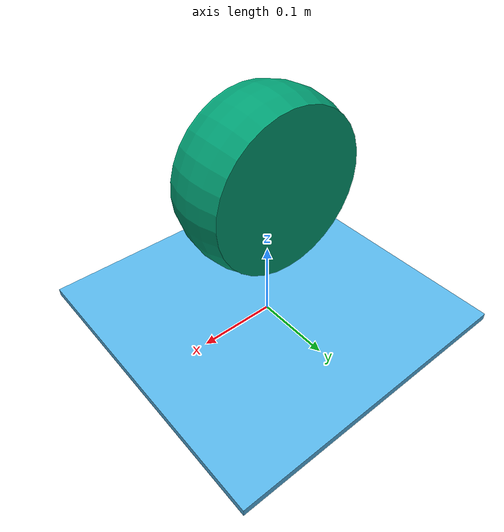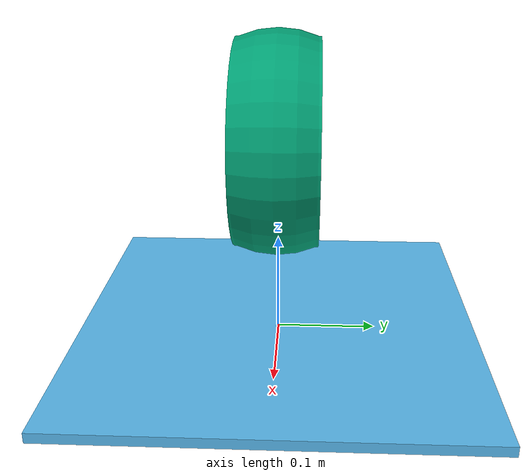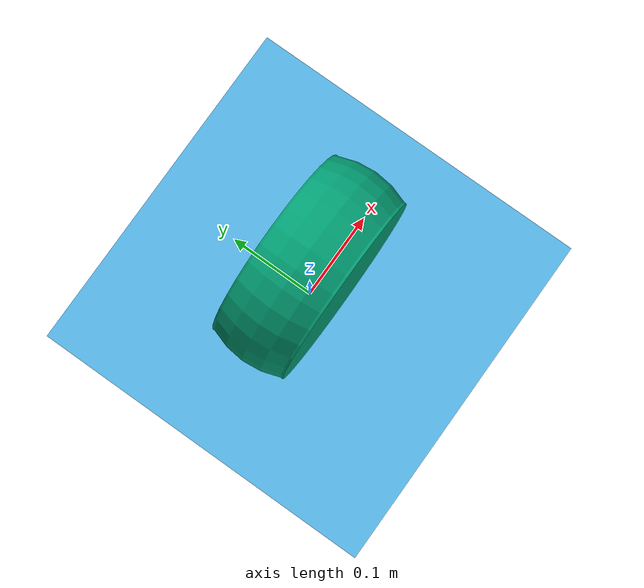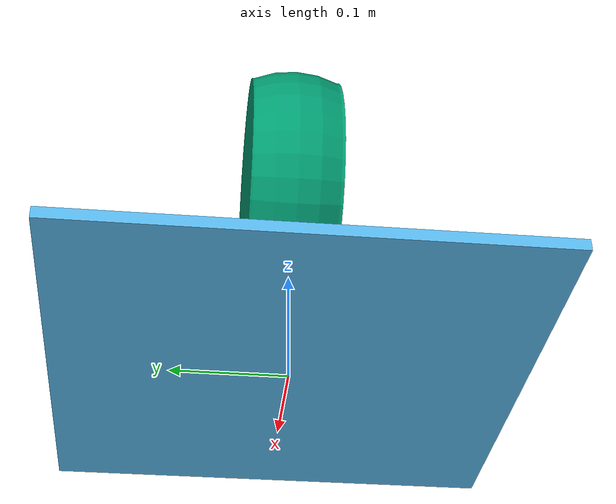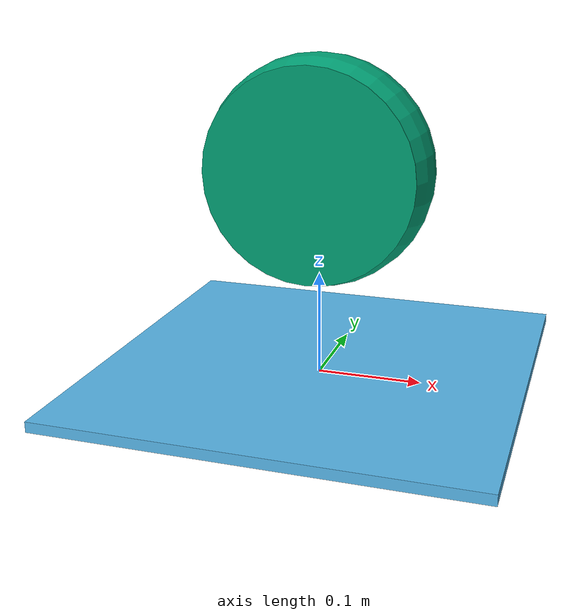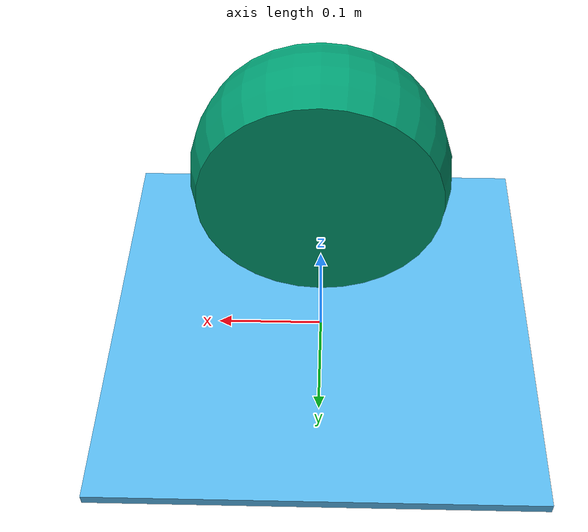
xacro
<?xml version="1.0"?>
<robot name="motor" xmlns:xacro="http://www.ros.org/wiki/xacro">

  <link name="base_footprint"/>

  <link name="base_link">
      <visual>
        <origin rpy="0 0 0 " xyz="0 0 0.005"/>
        <geometry>
            <box size="0.4 0.4 0.01"/>
        </geometry>
      </visual>
      <collision>
        <origin rpy="0 0 0 " xyz="0 0 0.005"/>
        <geometry>
          <box size="0.4 0.4 0.01"/>
        </geometry>
      </collision>
      <inertial>
        <origin rpy="0 0 0 " xyz="0 0 0.005"/>
        <geometry>
          <box size="0.4 0.4 0.01"/>
        </geometry>
        <mass value="100"/>
        <inertia ixx="1.0265" ixy="0" ixz="0" iyy="1.3944999999999999" iyz="0" izz="2.1320000000000001"/>
      </inertial>
  </link>

  <joint name="base_joint" type="fixed">
      <parent link="base_footprint"/>
      <child link="base_link"/>
      <origin rpy="0 0 0" xyz="0 0 0"/>
  </joint>

  <xacro:macro name="wheel" params="name">
    <link name="${name}_wheel_link">
      <visual>
        <origin rpy="1.57  0 0" xyz="0 0 0"/>
        <geometry>
            <mesh filename="package://pioneer2dx/meshes/wheel_v5.dae"/>
        </geometry>
      </visual>
      <collision>
          <origin rpy="0 0 0" xyz="0 0 0"/>
          <geometry>
              <cylinder length="0.05" radius="0.11"/>
          </geometry>
      </collision>
      <inertial>
        <origin rpy="0 0 0" xyz="0 0 0"/>
        <geometry>
            <mesh filename="package://pioneer2dx/meshes/wheel_v5.dae"/>
        </geometry>
          <mass value="3.5"/>
          <inertia ixx="0.0267" ixy="0" ixz="0" iyy="0.0267" iyz="0" izz="0.0506"/>
      </inertial>
    </link>
  </xacro:macro>

  <xacro:wheel name="one"/>

  <xacro:include filename="$(find gazebo_ros_motors)/xacro/dc_motor.xacro"/>
  <xacro:dc_motor motor_name="dc_motor" parent_link="base_link" child_link="one_wheel_link">
    <xacro:property name="params_yaml" value="$(find gazebo_ros_motors)/params/dc_motor.yaml"/>
    <origin xyz="0 0 0.2" rpy="1.57 0 0"/>
    <axis xyz="0 0 1"/>
  </xacro:dc_motor>

</robot>

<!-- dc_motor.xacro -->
<robot xmlns:xacro="http://www.ros.org/wiki/xacro">

<xacro:macro name="dc_motor" params="motor_name parent_link child_link *origin *axis">
  <xacro:property name="motor_param" value="${xacro.load_yaml(params_yaml)}"/>
  <joint name="${motor_name}" type="continuous">
      <parent link="${parent_link}"/>
      <child link="${child_link}"/>
      <xacro:insert_block name="origin"/>
      <xacro:insert_block name="axis"/>
      <dynamics damping="${motor_param['joint_damping']}" friction="${motor_param['joint_friction']}"/>
  </joint>
  <gazebo reference="${motor_name}">
    <provideFeedback>true</provideFeedback>
  </gazebo>
  <gazebo>
    <plugin name="${motor_name}_plugin" filename="libgazebo_ros_dc_motor.so">
      <motor_shaft_joint>${motor_name}</motor_shaft_joint>
      <motor_wrench_frame>${child_link}</motor_wrench_frame>
      <command_topic>${motor_name}/command</command_topic>
      <velocity_topic>${motor_name}/velocity</velocity_topic>
      <encoder_topic>${motor_name}/encoder</encoder_topic>
      <current_topic>${motor_name}/current</current_topic>
      <supply_topic>${motor_name}/supply_voltage</supply_topic>
      <publish_encoder>${motor_param['publish_encoder']}</publish_encoder>
      <publish_velocity>${motor_param['publish_velocity']}</publish_velocity>
      <publish_current>${motor_param['publish_current']}</publish_current>
	      <!-- Nuevo, editado -->
	      <!-- Nuevo, editado -->
      <publish_motor_joint_state>${motor_param['publish_motor_joint_state']}</publish_motor_joint_state>
      <update_rate>${motor_param['update_rate']}</update_rate>
      <motor_nominal_voltage>${motor_param['motor_nominal_voltage']}</motor_nominal_voltage>
      <moment_of_inertia>${motor_param['moment_of_inertia']}</moment_of_inertia>
      <armature_damping_ratio>${motor_param['armature_damping_ratio']}</armature_damping_ratio>
      <electromotive_force_constant>${motor_param['electromotive_force_constant']}</electromotive_force_constant>
      <electric_resistance>${motor_param['electric_resistance']}</electric_resistance>
      <electric_inductance>${motor_param['electric_inductance']}</electric_inductance>
      <gear_ratio>${motor_param['gear_ratio']}</gear_ratio>
      <encoder_ppr>${motor_param['encoder_ppr']}</encoder_ppr>
      <velocity_noise>${motor_param['velocity_noise']}</velocity_noise>
      <rosDebugLevel>Debug</rosDebugLevel>
    </plugin>
  </gazebo>

</xacro:macro>

</robot>
